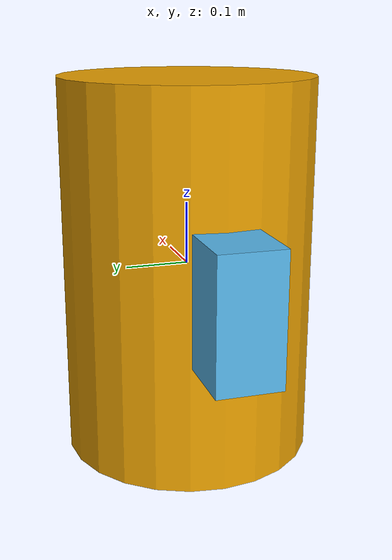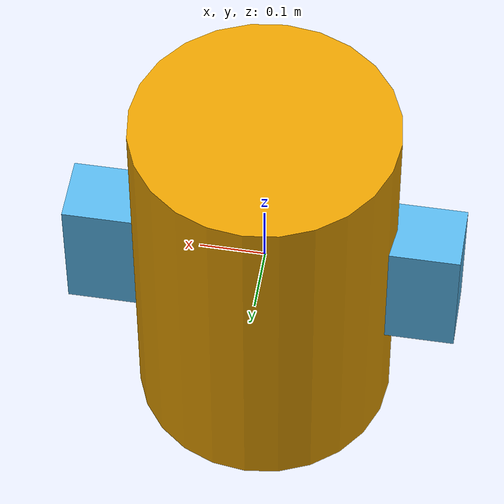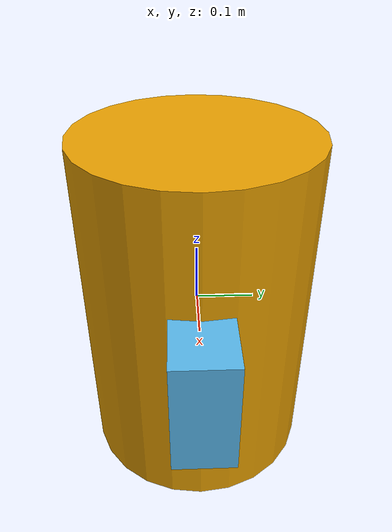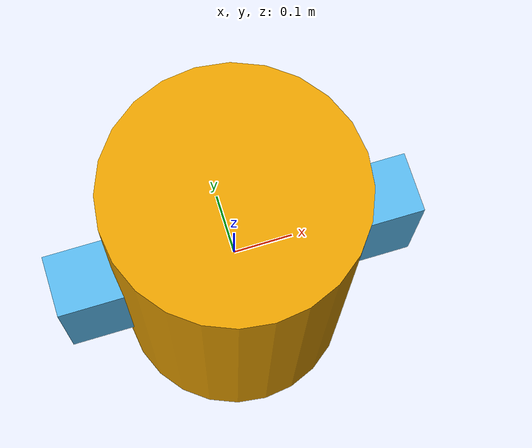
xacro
<?xml version="1.0"?>
<robot xmlns:xacro="http://www.ros.org/wiki/xacro">
    <xacro:arg name="prefix" default=""/>

    <xacro:macro name="robot" params="prefix">
        <link name="${prefix}_link1">
            <visual>
                <geometry>
                    <cylinder length="0.6" radius="0.2"/>
                </geometry>
            </visual>
        </link>

        <link name="${prefix}_link2">
            <visual>
                <geometry>
                    <box size="0.6 0.1 0.2"/>
                </geometry>
            </visual>
        </link>

        <joint name="${prefix}_joint" type="fixed">
            <parent link="${prefix}_link1"/>
            <child link="${prefix}_link2"/>
        </joint>
    </xacro:macro>

    <xacro:robot prefix="$(arg prefix)"/>

</robot>
